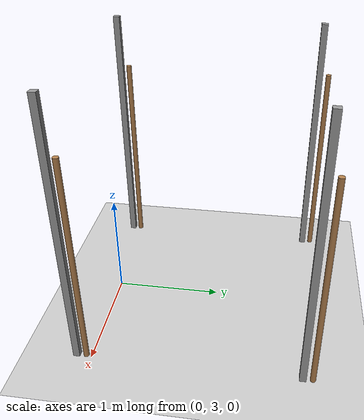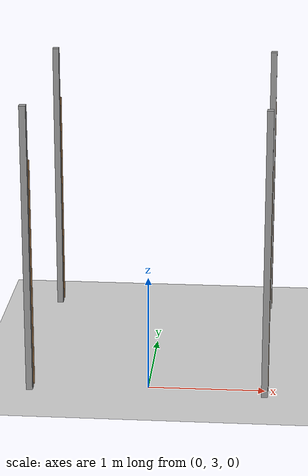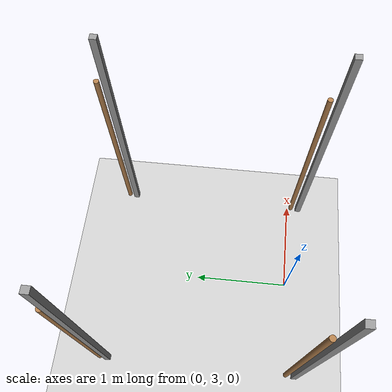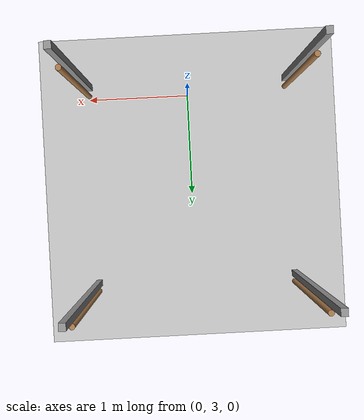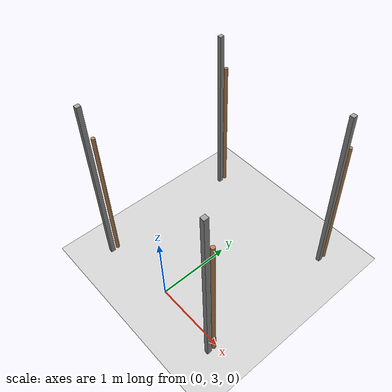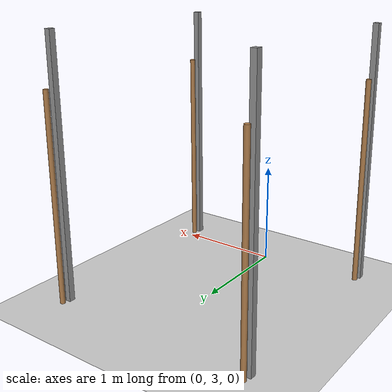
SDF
<sdf version="1.7">
 <world name="default">
  <model name="ground_plane">
   <static>1</static>
   <link name="link">
    <collision name="collision">
     <geometry><plane><normal>0 0 1</normal><size>100 100</size></plane></geometry>
     <surface><friction><ode><mu>100</mu><mu2>50</mu2></ode></friction></surface>
    </collision>
    <visual name="visual">
     <cast_shadows>0</cast_shadows>
     <geometry><plane><normal>0 0 1</normal><size>100 100</size></plane></geometry>
     <material>
      <script><uri>file://media/materials/scripts/gazebo.material</uri><name>Gazebo/Grey</name></script>
     </material>
    </visual>
   </link>
  </model>
  <model name="vineyard1_clone_8">
   <pose>-1 3 0 0 -0 0</pose>
   <frame name="vineyard::__model__" attached_to="vineyard::link">
    <pose relative_to="__model__">0 0 0 0 -0 0</pose>
   </frame>
   <link name="vineyard::link">
    <pose relative_to="vineyard::__model__">0 -0.042492 1.02106 0 -0 0</pose>
    <inertial>
     <mass>0.0175</mass>
     <inertia>
      <ixx>9.75e-06</ixx>
      <ixy>0</ixy>
      <ixz>0</ixz>
      <iyy>9.75e-06</iyy>
      <iyz>0</iyz>
      <izz>8.3e-07</izz>
     </inertia>
    </inertial>
    <visual name="visual">
     <geometry><cylinder><radius>0.025</radius><length>2</length></cylinder></geometry>
     <material>
      <script><uri>file://media/materials/scripts/gazebo.material</uri><name>Gazebo/Wood</name></script>
      <shader type="pixel"><normal_map>__default__</normal_map></shader>
      <ambient>1 1 1 1</ambient>
      <diffuse>1 1 1 1</diffuse>
      <specular>0.2 0.2 0.2 1</specular>
      <emissive>0 0 0 1</emissive>
     </material>
    </visual>
    <collision name="collision">
     <geometry><cylinder><radius>0.025</radius><length>2</length></cylinder></geometry>
     <surface>
      <friction>
       <ode><mu>1</mu><mu2>1</mu2><fdir1>0 0 0</fdir1><slip1>0</slip1><slip2>0</slip2></ode>
       <torsional>
        <coefficient>1</coefficient>
        <patch_radius>0</patch_radius>
        <surface_radius>0.01</surface_radius>
        <use_patch_radius>0</use_patch_radius>
        <ode><slip>0</slip></ode>
       </torsional>
      </friction>
      <bounce><restitution_coefficient>0</restitution_coefficient><threshold>1e+06</threshold></bounce>
      <contact>
       <collide_without_contact>0</collide_without_contact>
       <collide_without_contact_bitmask>1</collide_without_contact_bitmask>
       <collide_bitmask>1</collide_bitmask>
       <ode>
        <soft_cfm>0</soft_cfm>
        <soft_erp>0.2</soft_erp>
        <kp>100000</kp>
        <kd>100</kd>
        <max_vel>100</max_vel>
        <min_depth>0.001</min_depth>
       </ode>
       <bullet>
        <split_impulse>1</split_impulse>
        <split_impulse_penetration_threshold>-0.01</split_impulse_penetration_threshold>
        <soft_cfm>0</soft_cfm>
        <soft_erp>0.2</soft_erp>
        <kp>100000</kp>
        <kd>100</kd>
       </bullet>
      </contact>
     </surface>
    </collision>
   </link>
   <link name="vineyard::link_0">
    <inertial>
     <mass>1</mass>
     <inertia>
      <ixx>0.166667</ixx>
      <ixy>0</ixy>
      <ixz>0</ixz>
      <iyy>0.166667</iyy>
      <iyz>0</iyz>
      <izz>0.166667</izz>
     </inertia>
    </inertial>
    <pose relative_to="vineyard::__model__">-0.005498 -0.128915 1.26447 -1.3e-05 1.5e-05 -0</pose>
    <visual name="visual">
     <geometry><box><size>0.055 0.06 2.5</size></box></geometry>
     <material>
      <lighting>1</lighting>
      <script><uri>file://media/materials/scripts/gazebo.material</uri><name>Gazebo/Grey</name></script>
      <shader type="pixel"><normal_map>__default__</normal_map></shader>
      <ambient>0.3 0.3 0.3 1</ambient>
      <diffuse>0.7 0.7 0.7 1</diffuse>
      <specular>0.01 0.01 0.01 1</specular>
      <emissive>0 0 0 1</emissive>
     </material>
    </visual>
    <collision name="collision">
     <geometry><box><size>0.055 0.06 2.5</size></box></geometry>
     <surface>
      <friction>
       <ode><mu>1</mu><mu2>1</mu2><fdir1>0 0 0</fdir1><slip1>0</slip1><slip2>0</slip2></ode>
       <torsional>
        <coefficient>1</coefficient>
        <patch_radius>0</patch_radius>
        <surface_radius>0</surface_radius>
        <use_patch_radius>1</use_patch_radius>
        <ode><slip>0</slip></ode>
       </torsional>
      </friction>
      <bounce><restitution_coefficient>0</restitution_coefficient><threshold>1e+06</threshold></bounce>
      <contact>
       <collide_without_contact>0</collide_without_contact>
       <collide_without_contact_bitmask>1</collide_without_contact_bitmask>
       <collide_bitmask>1</collide_bitmask>
       <ode>
        <soft_cfm>0</soft_cfm>
        <soft_erp>0.2</soft_erp>
        <kp>1e+13</kp>
        <kd>1</kd>
        <max_vel>0.01</max_vel>
        <min_depth>0</min_depth>
       </ode>
       <bullet>
        <split_impulse>1</split_impulse>
        <split_impulse_penetration_threshold>-0.01</split_impulse_penetration_threshold>
        <soft_cfm>0</soft_cfm>
        <soft_erp>0.2</soft_erp>
        <kp>1e+13</kp>
        <kd>1</kd>
       </bullet>
      </contact>
     </surface>
    </collision>
   </link>
   <static>1</static>
  </model>
  <model name="vineyard1_clone_9">
   <pose>1 3 0 0 -0 0</pose>
   <frame name="vineyard::__model__" attached_to="vineyard::link">
    <pose relative_to="__model__">0 0 0 0 -0 0</pose>
   </frame>
   <link name="vineyard::link">
    <pose relative_to="vineyard::__model__">0 -0.042492 1.02106 0 -0 0</pose>
    <inertial>
     <mass>0.0175</mass>
     <inertia>
      <ixx>9.75e-06</ixx>
      <ixy>0</ixy>
      <ixz>0</ixz>
      <iyy>9.75e-06</iyy>
      <iyz>0</iyz>
      <izz>8.3e-07</izz>
     </inertia>
    </inertial>
    <visual name="visual">
     <geometry><cylinder><radius>0.025</radius><length>2</length></cylinder></geometry>
     <material>
      <script><uri>file://media/materials/scripts/gazebo.material</uri><name>Gazebo/Wood</name></script>
      <shader type="pixel"><normal_map>__default__</normal_map></shader>
      <ambient>1 1 1 1</ambient>
      <diffuse>1 1 1 1</diffuse>
      <specular>0.2 0.2 0.2 1</specular>
      <emissive>0 0 0 1</emissive>
     </material>
    </visual>
    <collision name="collision">
     <geometry><cylinder><radius>0.025</radius><length>2</length></cylinder></geometry>
     <surface>
      <friction>
       <ode><mu>1</mu><mu2>1</mu2><fdir1>0 0 0</fdir1><slip1>0</slip1><slip2>0</slip2></ode>
       <torsional>
        <coefficient>1</coefficient>
        <patch_radius>0</patch_radius>
        <surface_radius>0.01</surface_radius>
        <use_patch_radius>0</use_patch_radius>
        <ode><slip>0</slip></ode>
       </torsional>
      </friction>
      <bounce><restitution_coefficient>0</restitution_coefficient><threshold>1e+06</threshold></bounce>
      <contact>
       <collide_without_contact>0</collide_without_contact>
       <collide_without_contact_bitmask>1</collide_without_contact_bitmask>
       <collide_bitmask>1</collide_bitmask>
       <ode>
        <soft_cfm>0</soft_cfm>
        <soft_erp>0.2</soft_erp>
        <kp>100000</kp>
        <kd>100</kd>
        <max_vel>100</max_vel>
        <min_depth>0.001</min_depth>
       </ode>
       <bullet>
        <split_impulse>1</split_impulse>
        <split_impulse_penetration_threshold>-0.01</split_impulse_penetration_threshold>
        <soft_cfm>0</soft_cfm>
        <soft_erp>0.2</soft_erp>
        <kp>100000</kp>
        <kd>100</kd>
       </bullet>
      </contact>
     </surface>
    </collision>
   </link>
   <link name="vineyard::link_0">
    <inertial>
     <mass>1</mass>
     <inertia>
      <ixx>0.166667</ixx>
      <ixy>0</ixy>
      <ixz>0</ixz>
      <iyy>0.166667</iyy>
      <iyz>0</iyz>
      <izz>0.166667</izz>
     </inertia>
    </inertial>
    <pose relative_to="vineyard::__model__">-0.005498 -0.128915 1.26447 -1.3e-05 1.5e-05 -0</pose>
    <visual name="visual">
     <geometry><box><size>0.055 0.06 2.5</size></box></geometry>
     <material>
      <lighting>1</lighting>
      <script><uri>file://media/materials/scripts/gazebo.material</uri><name>Gazebo/Grey</name></script>
      <shader type="pixel"><normal_map>__default__</normal_map></shader>
      <ambient>0.3 0.3 0.3 1</ambient>
      <diffuse>0.7 0.7 0.7 1</diffuse>
      <specular>0.01 0.01 0.01 1</specular>
      <emissive>0 0 0 1</emissive>
     </material>
    </visual>
    <collision name="collision">
     <geometry><box><size>0.055 0.06 2.5</size></box></geometry>
     <surface>
      <friction>
       <ode><mu>1</mu><mu2>1</mu2><fdir1>0 0 0</fdir1><slip1>0</slip1><slip2>0</slip2></ode>
       <torsional>
        <coefficient>1</coefficient>
        <patch_radius>0</patch_radius>
        <surface_radius>0</surface_radius>
        <use_patch_radius>1</use_patch_radius>
        <ode><slip>0</slip></ode>
       </torsional>
      </friction>
      <bounce><restitution_coefficient>0</restitution_coefficient><threshold>1e+06</threshold></bounce>
      <contact>
       <collide_without_contact>0</collide_without_contact>
       <collide_without_contact_bitmask>1</collide_without_contact_bitmask>
       <collide_bitmask>1</collide_bitmask>
       <ode>
        <soft_cfm>0</soft_cfm>
        <soft_erp>0.2</soft_erp>
        <kp>1e+13</kp>
        <kd>1</kd>
        <max_vel>0.01</max_vel>
        <min_depth>0</min_depth>
       </ode>
       <bullet>
        <split_impulse>1</split_impulse>
        <split_impulse_penetration_threshold>-0.01</split_impulse_penetration_threshold>
        <soft_cfm>0</soft_cfm>
        <soft_erp>0.2</soft_erp>
        <kp>1e+13</kp>
        <kd>1</kd>
       </bullet>
      </contact>
     </surface>
    </collision>
   </link>
   <static>1</static>
  </model>
  <model name="vineyard1_clone_12">
   <pose>-1 5 0 0 -0 0</pose>
   <frame name="vineyard::__model__" attached_to="vineyard::link">
    <pose relative_to="__model__">0 0 0 0 -0 0</pose>
   </frame>
   <link name="vineyard::link">
    <pose relative_to="vineyard::__model__">0 -0.042492 1.02106 0 -0 0</pose>
    <inertial>
     <mass>0.0175</mass>
     <inertia>
      <ixx>9.75e-06</ixx>
      <ixy>0</ixy>
      <ixz>0</ixz>
      <iyy>9.75e-06</iyy>
      <iyz>0</iyz>
      <izz>8.3e-07</izz>
     </inertia>
    </inertial>
    <visual name="visual">
     <geometry><cylinder><radius>0.025</radius><length>2</length></cylinder></geometry>
     <material>
      <script><uri>file://media/materials/scripts/gazebo.material</uri><name>Gazebo/Wood</name></script>
      <shader type="pixel"><normal_map>__default__</normal_map></shader>
      <ambient>1 1 1 1</ambient>
      <diffuse>1 1 1 1</diffuse>
      <specular>0.2 0.2 0.2 1</specular>
      <emissive>0 0 0 1</emissive>
     </material>
    </visual>
    <collision name="collision">
     <geometry><cylinder><radius>0.025</radius><length>2</length></cylinder></geometry>
     <surface>
      <friction>
       <ode><mu>1</mu><mu2>1</mu2><fdir1>0 0 0</fdir1><slip1>0</slip1><slip2>0</slip2></ode>
       <torsional>
        <coefficient>1</coefficient>
        <patch_radius>0</patch_radius>
        <surface_radius>0.01</surface_radius>
        <use_patch_radius>0</use_patch_radius>
        <ode><slip>0</slip></ode>
       </torsional>
      </friction>
      <bounce><restitution_coefficient>0</restitution_coefficient><threshold>1e+06</threshold></bounce>
      <contact>
       <collide_without_contact>0</collide_without_contact>
       <collide_without_contact_bitmask>1</collide_without_contact_bitmask>
       <collide_bitmask>1</collide_bitmask>
       <ode>
        <soft_cfm>0</soft_cfm>
        <soft_erp>0.2</soft_erp>
        <kp>100000</kp>
        <kd>100</kd>
        <max_vel>100</max_vel>
        <min_depth>0.001</min_depth>
       </ode>
       <bullet>
        <split_impulse>1</split_impulse>
        <split_impulse_penetration_threshold>-0.01</split_impulse_penetration_threshold>
        <soft_cfm>0</soft_cfm>
        <soft_erp>0.2</soft_erp>
        <kp>100000</kp>
        <kd>100</kd>
       </bullet>
      </contact>
     </surface>
    </collision>
   </link>
   <link name="vineyard::link_0">
    <inertial>
     <mass>1</mass>
     <inertia>
      <ixx>0.166667</ixx>
      <ixy>0</ixy>
      <ixz>0</ixz>
      <iyy>0.166667</iyy>
      <iyz>0</iyz>
      <izz>0.166667</izz>
     </inertia>
    </inertial>
    <pose relative_to="vineyard::__model__">-0.005498 -0.128915 1.26447 -1.3e-05 1.5e-05 -0</pose>
    <visual name="visual">
     <geometry><box><size>0.055 0.06 2.5</size></box></geometry>
     <material>
      <lighting>1</lighting>
      <script><uri>file://media/materials/scripts/gazebo.material</uri><name>Gazebo/Grey</name></script>
      <shader type="pixel"><normal_map>__default__</normal_map></shader>
      <ambient>0.3 0.3 0.3 1</ambient>
      <diffuse>0.7 0.7 0.7 1</diffuse>
      <specular>0.01 0.01 0.01 1</specular>
      <emissive>0 0 0 1</emissive>
     </material>
    </visual>
    <collision name="collision">
     <geometry><box><size>0.055 0.06 2.5</size></box></geometry>
     <surface>
      <friction>
       <ode><mu>1</mu><mu2>1</mu2><fdir1>0 0 0</fdir1><slip1>0</slip1><slip2>0</slip2></ode>
       <torsional>
        <coefficient>1</coefficient>
        <patch_radius>0</patch_radius>
        <surface_radius>0</surface_radius>
        <use_patch_radius>1</use_patch_radius>
        <ode><slip>0</slip></ode>
       </torsional>
      </friction>
      <bounce><restitution_coefficient>0</restitution_coefficient><threshold>1e+06</threshold></bounce>
      <contact>
       <collide_without_contact>0</collide_without_contact>
       <collide_without_contact_bitmask>1</collide_without_contact_bitmask>
       <collide_bitmask>1</collide_bitmask>
       <ode>
        <soft_cfm>0</soft_cfm>
        <soft_erp>0.2</soft_erp>
        <kp>1e+13</kp>
        <kd>1</kd>
        <max_vel>0.01</max_vel>
        <min_depth>0</min_depth>
       </ode>
       <bullet>
        <split_impulse>1</split_impulse>
        <split_impulse_penetration_threshold>-0.01</split_impulse_penetration_threshold>
        <soft_cfm>0</soft_cfm>
        <soft_erp>0.2</soft_erp>
        <kp>1e+13</kp>
        <kd>1</kd>
       </bullet>
      </contact>
     </surface>
    </collision>
   </link>
   <static>1</static>
  </model>
  <model name="vineyard1_clone_13">
   <pose>1 5 0 0 -0 0</pose>
   <frame name="vineyard::__model__" attached_to="vineyard::link">
    <pose relative_to="__model__">0 0 0 0 -0 0</pose>
   </frame>
   <link name="vineyard::link">
    <pose relative_to="vineyard::__model__">0 -0.042492 1.02106 0 -0 0</pose>
    <inertial>
     <mass>0.0175</mass>
     <inertia>
      <ixx>9.75e-06</ixx>
      <ixy>0</ixy>
      <ixz>0</ixz>
      <iyy>9.75e-06</iyy>
      <iyz>0</iyz>
      <izz>8.3e-07</izz>
     </inertia>
    </inertial>
    <visual name="visual">
     <geometry><cylinder><radius>0.025</radius><length>2</length></cylinder></geometry>
     <material>
      <script><uri>file://media/materials/scripts/gazebo.material</uri><name>Gazebo/Wood</name></script>
      <shader type="pixel"><normal_map>__default__</normal_map></shader>
      <ambient>1 1 1 1</ambient>
      <diffuse>1 1 1 1</diffuse>
      <specular>0.2 0.2 0.2 1</specular>
      <emissive>0 0 0 1</emissive>
     </material>
    </visual>
    <collision name="collision">
     <geometry><cylinder><radius>0.025</radius><length>2</length></cylinder></geometry>
     <surface>
      <friction>
       <ode><mu>1</mu><mu2>1</mu2><fdir1>0 0 0</fdir1><slip1>0</slip1><slip2>0</slip2></ode>
       <torsional>
        <coefficient>1</coefficient>
        <patch_radius>0</patch_radius>
        <surface_radius>0.01</surface_radius>
        <use_patch_radius>0</use_patch_radius>
        <ode><slip>0</slip></ode>
       </torsional>
      </friction>
      <bounce><restitution_coefficient>0</restitution_coefficient><threshold>1e+06</threshold></bounce>
      <contact>
       <collide_without_contact>0</collide_without_contact>
       <collide_without_contact_bitmask>1</collide_without_contact_bitmask>
       <collide_bitmask>1</collide_bitmask>
       <ode>
        <soft_cfm>0</soft_cfm>
        <soft_erp>0.2</soft_erp>
        <kp>100000</kp>
        <kd>100</kd>
        <max_vel>100</max_vel>
        <min_depth>0.001</min_depth>
       </ode>
       <bullet>
        <split_impulse>1</split_impulse>
        <split_impulse_penetration_threshold>-0.01</split_impulse_penetration_threshold>
        <soft_cfm>0</soft_cfm>
        <soft_erp>0.2</soft_erp>
        <kp>100000</kp>
        <kd>100</kd>
       </bullet>
      </contact>
     </surface>
    </collision>
   </link>
   <link name="vineyard::link_0">
    <inertial>
     <mass>1</mass>
     <inertia>
      <ixx>0.166667</ixx>
      <ixy>0</ixy>
      <ixz>0</ixz>
      <iyy>0.166667</iyy>
      <iyz>0</iyz>
      <izz>0.166667</izz>
     </inertia>
    </inertial>
    <pose relative_to="vineyard::__model__">-0.005498 -0.128915 1.26447 -1.3e-05 1.5e-05 -0</pose>
    <visual name="visual">
     <geometry><box><size>0.055 0.06 2.5</size></box></geometry>
     <material>
      <lighting>1</lighting>
      <script><uri>file://media/materials/scripts/gazebo.material</uri><name>Gazebo/Grey</name></script>
      <shader type="pixel"><normal_map>__default__</normal_map></shader>
      <ambient>0.3 0.3 0.3 1</ambient>
      <diffuse>0.7 0.7 0.7 1</diffuse>
      <specular>0.01 0.01 0.01 1</specular>
      <emissive>0 0 0 1</emissive>
     </material>
    </visual>
    <collision name="collision">
     <geometry><box><size>0.055 0.06 2.5</size></box></geometry>
     <surface>
      <friction>
       <ode><mu>1</mu><mu2>1</mu2><fdir1>0 0 0</fdir1><slip1>0</slip1><slip2>0</slip2></ode>
       <torsional>
        <coefficient>1</coefficient>
        <patch_radius>0</patch_radius>
        <surface_radius>0</surface_radius>
        <use_patch_radius>1</use_patch_radius>
        <ode><slip>0</slip></ode>
       </torsional>
      </friction>
      <bounce><restitution_coefficient>0</restitution_coefficient><threshold>1e+06</threshold></bounce>
      <contact>
       <collide_without_contact>0</collide_without_contact>
       <collide_without_contact_bitmask>1</collide_without_contact_bitmask>
       <collide_bitmask>1</collide_bitmask>
       <ode>
        <soft_cfm>0</soft_cfm>
        <soft_erp>0.2</soft_erp>
        <kp>1e+13</kp>
        <kd>1</kd>
        <max_vel>0.01</max_vel>
        <min_depth>0</min_depth>
       </ode>
       <bullet>
        <split_impulse>1</split_impulse>
        <split_impulse_penetration_threshold>-0.01</split_impulse_penetration_threshold>
        <soft_cfm>0</soft_cfm>
        <soft_erp>0.2</soft_erp>
        <kp>1e+13</kp>
        <kd>1</kd>
       </bullet>
      </contact>
     </surface>
    </collision>
   </link>
   <static>1</static>
  </model>
 </world>
</sdf>
